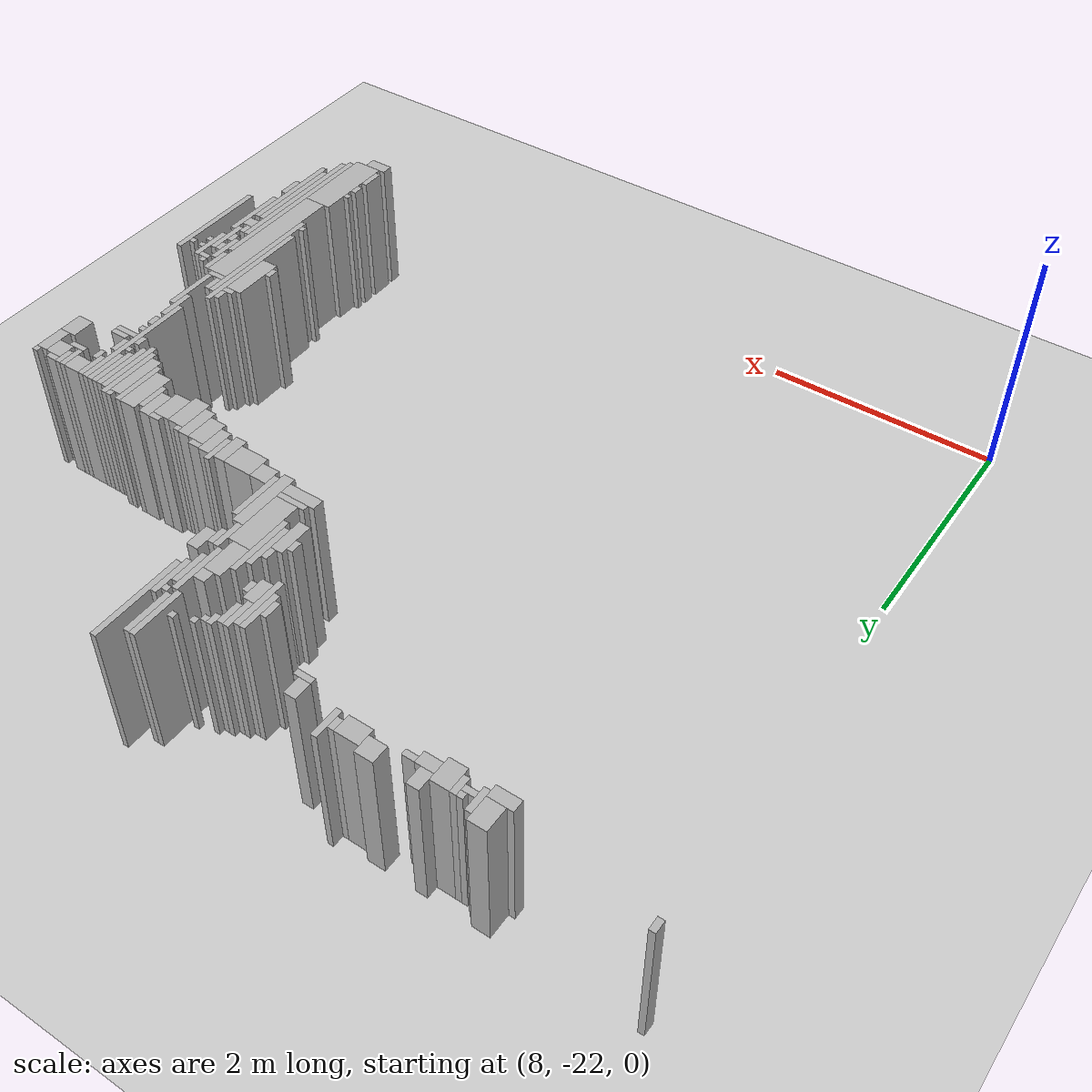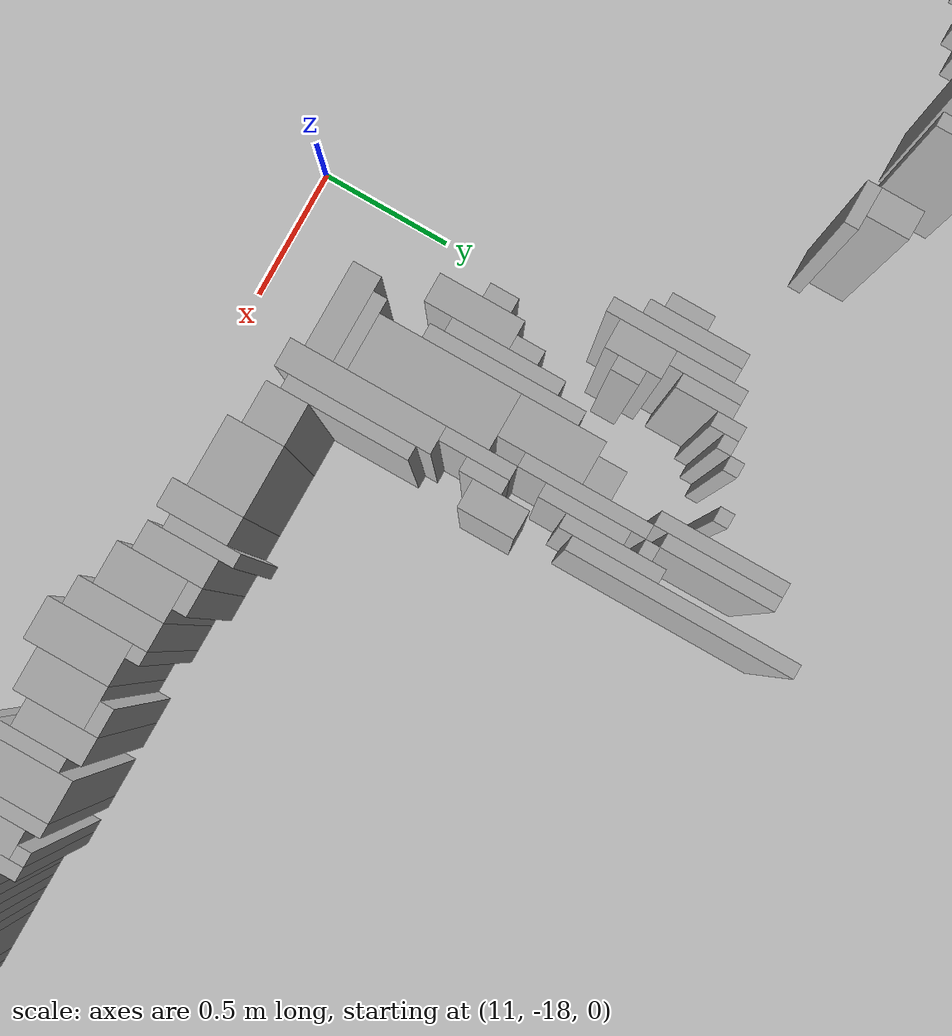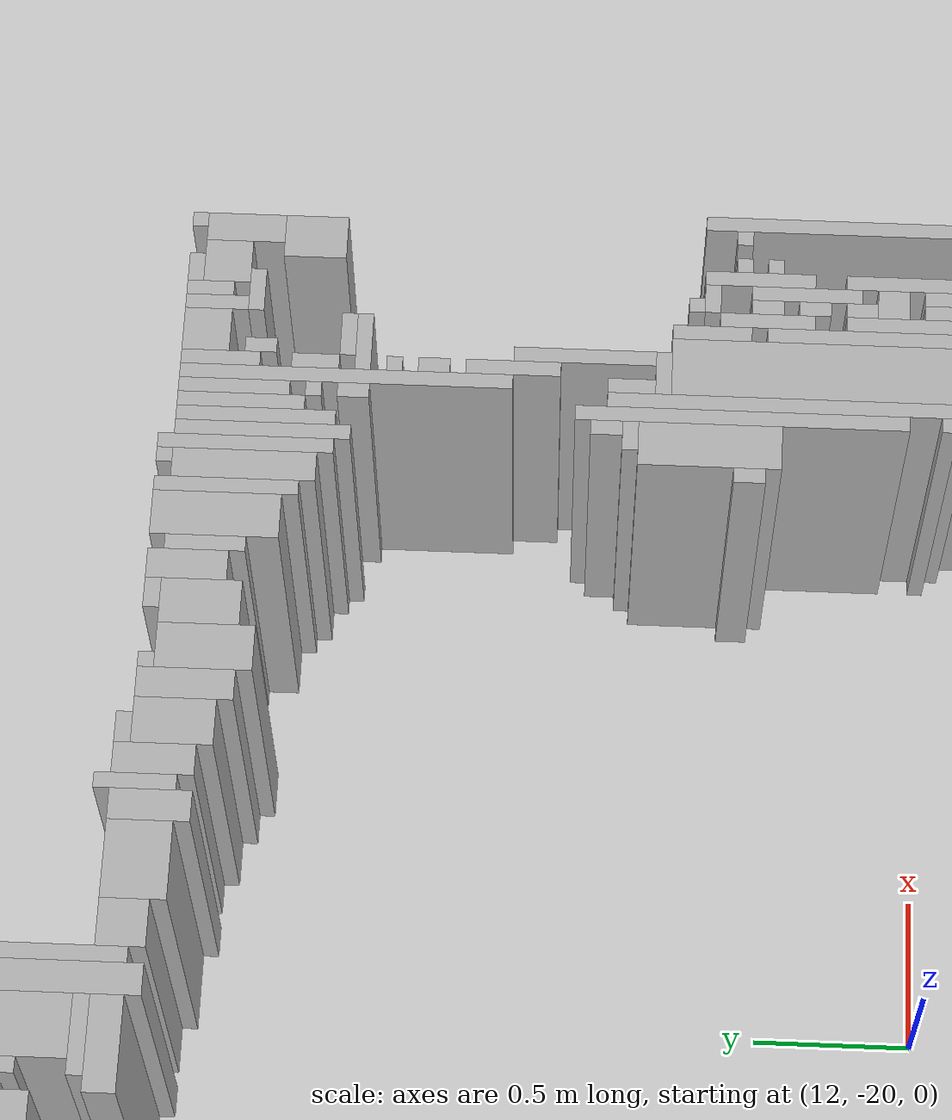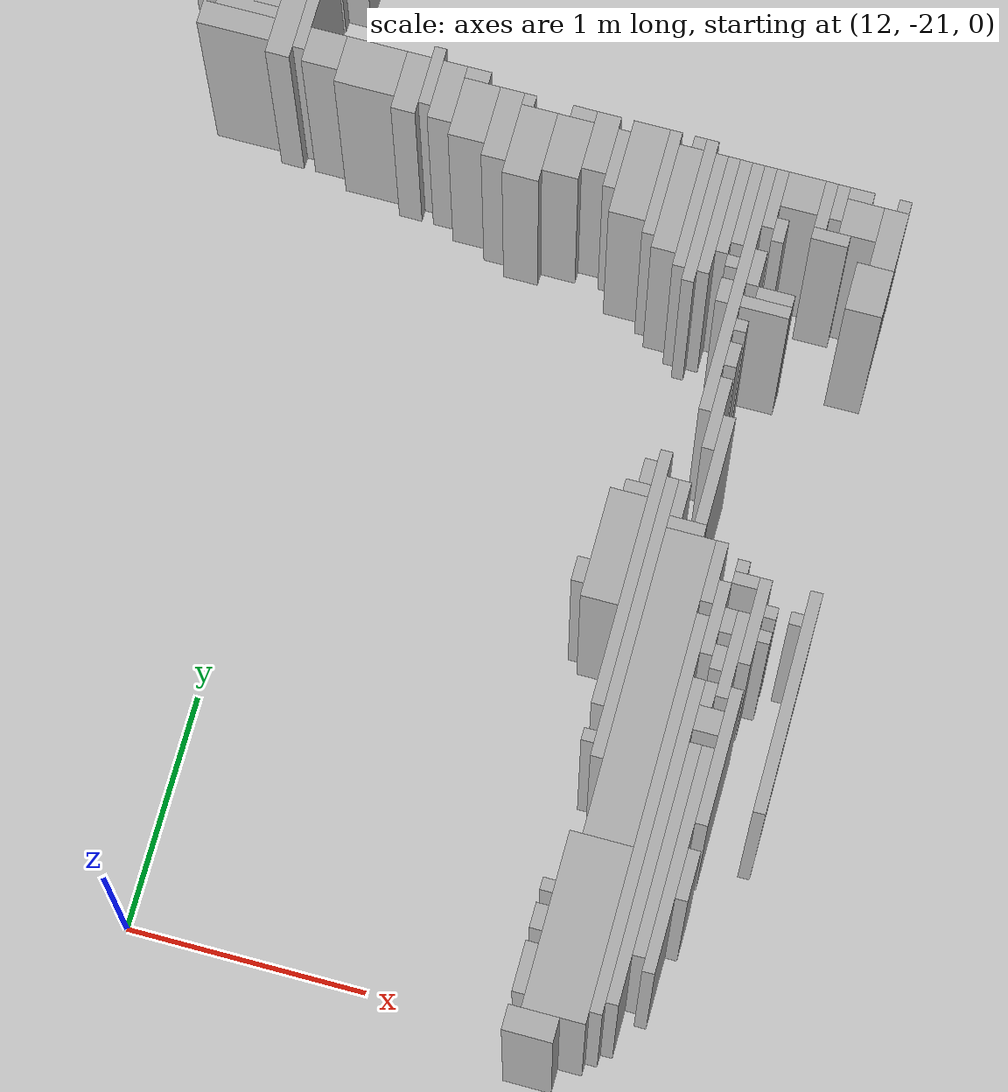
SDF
<sdf version="1.6">
 <world name="d10_floor">
  <include><uri>model://sun</uri></include>
  <include><uri>model://ground_plane</uri></include>
  <model name="d10_walls">
   <static>true</static>
   <link name="w0">
    <pose>13.725 -21.145 0.60 0 0 0</pose>
    <collision name="c"><geometry><box><size>0.200 0.100 1.20</size></box></geometry></collision>
    <visual name="v">
     <geometry><box><size>0.200 0.100 1.20</size></box></geometry>
     <material><ambient>0.6 0.6 0.6 1</ambient><diffuse>0.7 0.7 0.7 1</diffuse></material>
    </visual>
   </link>
   <link name="w1">
    <pose>13.800 -20.745 0.60 0 0 0</pose>
    <collision name="c"><geometry><box><size>0.250 0.700 1.20</size></box></geometry></collision>
    <visual name="v">
     <geometry><box><size>0.250 0.700 1.20</size></box></geometry>
     <material><ambient>0.6 0.6 0.6 1</ambient><diffuse>0.7 0.7 0.7 1</diffuse></material>
    </visual>
   </link>
   <link name="w2">
    <pose>13.650 -20.945 0.60 0 0 0</pose>
    <collision name="c"><geometry><box><size>0.050 0.200 1.20</size></box></geometry></collision>
    <visual name="v">
     <geometry><box><size>0.050 0.200 1.20</size></box></geometry>
     <material><ambient>0.6 0.6 0.6 1</ambient><diffuse>0.7 0.7 0.7 1</diffuse></material>
    </visual>
   </link>
   <link name="w3">
    <pose>13.950 -20.245 0.60 0 0 0</pose>
    <collision name="c"><geometry><box><size>0.050 1.600 1.20</size></box></geometry></collision>
    <visual name="v">
     <geometry><box><size>0.050 1.600 1.20</size></box></geometry>
     <material><ambient>0.6 0.6 0.6 1</ambient><diffuse>0.7 0.7 0.7 1</diffuse></material>
    </visual>
   </link>
   <link name="w4">
    <pose>14.000 -20.345 0.60 0 0 0</pose>
    <collision name="c"><geometry><box><size>0.050 1.300 1.20</size></box></geometry></collision>
    <visual name="v">
     <geometry><box><size>0.050 1.300 1.20</size></box></geometry>
     <material><ambient>0.6 0.6 0.6 1</ambient><diffuse>0.7 0.7 0.7 1</diffuse></material>
    </visual>
   </link>
   <link name="w5">
    <pose>14.100 -20.395 0.60 0 0 0</pose>
    <collision name="c"><geometry><box><size>0.050 0.900 1.20</size></box></geometry></collision>
    <visual name="v">
     <geometry><box><size>0.050 0.900 1.20</size></box></geometry>
     <material><ambient>0.6 0.6 0.6 1</ambient><diffuse>0.7 0.7 0.7 1</diffuse></material>
    </visual>
   </link>
   <link name="w6">
    <pose>13.650 -20.745 0.60 0 0 0</pose>
    <collision name="c"><geometry><box><size>0.050 0.100 1.20</size></box></geometry></collision>
    <visual name="v">
     <geometry><box><size>0.050 0.100 1.20</size></box></geometry>
     <material><ambient>0.6 0.6 0.6 1</ambient><diffuse>0.7 0.7 0.7 1</diffuse></material>
    </visual>
   </link>
   <link name="w7">
    <pose>14.050 -20.370 0.60 0 0 0</pose>
    <collision name="c"><geometry><box><size>0.050 0.850 1.20</size></box></geometry></collision>
    <visual name="v">
     <geometry><box><size>0.050 0.850 1.20</size></box></geometry>
     <material><ambient>0.6 0.6 0.6 1</ambient><diffuse>0.7 0.7 0.7 1</diffuse></material>
    </visual>
   </link>
   <link name="w11">
    <pose>13.650 -20.620 0.60 0 0 0</pose>
    <collision name="c"><geometry><box><size>0.050 0.050 1.20</size></box></geometry></collision>
    <visual name="v">
     <geometry><box><size>0.050 0.050 1.20</size></box></geometry>
     <material><ambient>0.6 0.6 0.6 1</ambient><diffuse>0.7 0.7 0.7 1</diffuse></material>
    </visual>
   </link>
   <link name="w22">
    <pose>14.150 -20.445 0.60 0 0 0</pose>
    <collision name="c"><geometry><box><size>0.050 0.200 1.20</size></box></geometry></collision>
    <visual name="v">
     <geometry><box><size>0.050 0.200 1.20</size></box></geometry>
     <material><ambient>0.6 0.6 0.6 1</ambient><diffuse>0.7 0.7 0.7 1</diffuse></material>
    </visual>
   </link>
   <link name="w36">
    <pose>13.825 -19.770 0.60 0 0 0</pose>
    <collision name="c"><geometry><box><size>0.200 1.250 1.20</size></box></geometry></collision>
    <visual name="v">
     <geometry><box><size>0.200 1.250 1.20</size></box></geometry>
     <material><ambient>0.6 0.6 0.6 1</ambient><diffuse>0.7 0.7 0.7 1</diffuse></material>
    </visual>
   </link>
   <link name="w51">
    <pose>14.150 -19.970 0.60 0 0 0</pose>
    <collision name="c"><geometry><box><size>0.050 0.550 1.20</size></box></geometry></collision>
    <visual name="v">
     <geometry><box><size>0.050 0.550 1.20</size></box></geometry>
     <material><ambient>0.6 0.6 0.6 1</ambient><diffuse>0.7 0.7 0.7 1</diffuse></material>
    </visual>
   </link>
   <link name="w55">
    <pose>14.350 -19.695 0.60 0 0 0</pose>
    <collision name="c"><geometry><box><size>0.050 0.900 1.20</size></box></geometry></collision>
    <visual name="v">
     <geometry><box><size>0.050 0.900 1.20</size></box></geometry>
     <material><ambient>0.6 0.6 0.6 1</ambient><diffuse>0.7 0.7 0.7 1</diffuse></material>
    </visual>
   </link>
   <link name="w57">
    <pose>13.700 -19.520 0.60 0 0 0</pose>
    <collision name="c"><geometry><box><size>0.050 1.150 1.20</size></box></geometry></collision>
    <visual name="v">
     <geometry><box><size>0.050 1.150 1.20</size></box></geometry>
     <material><ambient>0.6 0.6 0.6 1</ambient><diffuse>0.7 0.7 0.7 1</diffuse></material>
    </visual>
   </link>
   <link name="w60">
    <pose>13.650 -20.020 0.60 0 0 0</pose>
    <collision name="c"><geometry><box><size>0.050 0.050 1.20</size></box></geometry></collision>
    <visual name="v">
     <geometry><box><size>0.050 0.050 1.20</size></box></geometry>
     <material><ambient>0.6 0.6 0.6 1</ambient><diffuse>0.7 0.7 0.7 1</diffuse></material>
    </visual>
   </link>
   <link name="w69">
    <pose>13.650 -19.370 0.60 0 0 0</pose>
    <collision name="c"><geometry><box><size>0.050 1.050 1.20</size></box></geometry></collision>
    <visual name="v">
     <geometry><box><size>0.050 1.050 1.20</size></box></geometry>
     <material><ambient>0.6 0.6 0.6 1</ambient><diffuse>0.7 0.7 0.7 1</diffuse></material>
    </visual>
   </link>
   <link name="w70">
    <pose>14.075 -19.845 0.60 0 0 0</pose>
    <collision name="c"><geometry><box><size>0.100 0.100 1.20</size></box></geometry></collision>
    <visual name="v">
     <geometry><box><size>0.100 0.100 1.20</size></box></geometry>
     <material><ambient>0.6 0.6 0.6 1</ambient><diffuse>0.7 0.7 0.7 1</diffuse></material>
    </visual>
   </link>
   <link name="w72">
    <pose>14.050 -19.745 0.60 0 0 0</pose>
    <collision name="c"><geometry><box><size>0.050 0.100 1.20</size></box></geometry></collision>
    <visual name="v">
     <geometry><box><size>0.050 0.100 1.20</size></box></geometry>
     <material><ambient>0.6 0.6 0.6 1</ambient><diffuse>0.7 0.7 0.7 1</diffuse></material>
    </visual>
   </link>
   <link name="w74">
    <pose>14.100 -19.570 0.60 0 0 0</pose>
    <collision name="c"><geometry><box><size>0.050 0.350 1.20</size></box></geometry></collision>
    <visual name="v">
     <geometry><box><size>0.050 0.350 1.20</size></box></geometry>
     <material><ambient>0.6 0.6 0.6 1</ambient><diffuse>0.7 0.7 0.7 1</diffuse></material>
    </visual>
   </link>
   <link name="w76">
    <pose>14.050 -19.595 0.60 0 0 0</pose>
    <collision name="c"><geometry><box><size>0.050 0.100 1.20</size></box></geometry></collision>
    <visual name="v">
     <geometry><box><size>0.050 0.100 1.20</size></box></geometry>
     <material><ambient>0.6 0.6 0.6 1</ambient><diffuse>0.7 0.7 0.7 1</diffuse></material>
    </visual>
   </link>
   <link name="w79">
    <pose>14.000 -19.445 0.60 0 0 0</pose>
    <collision name="c"><geometry><box><size>0.050 0.300 1.20</size></box></geometry></collision>
    <visual name="v">
     <geometry><box><size>0.050 0.300 1.20</size></box></geometry>
     <material><ambient>0.6 0.6 0.6 1</ambient><diffuse>0.7 0.7 0.7 1</diffuse></material>
    </visual>
   </link>
   <link name="w80">
    <pose>14.150 -19.420 0.60 0 0 0</pose>
    <collision name="c"><geometry><box><size>0.050 0.350 1.20</size></box></geometry></collision>
    <visual name="v">
     <geometry><box><size>0.050 0.350 1.20</size></box></geometry>
     <material><ambient>0.6 0.6 0.6 1</ambient><diffuse>0.7 0.7 0.7 1</diffuse></material>
    </visual>
   </link>
   <link name="w82">
    <pose>13.550 -19.270 0.60 0 0 0</pose>
    <collision name="c"><geometry><box><size>0.150 0.450 1.20</size></box></geometry></collision>
    <visual name="v">
     <geometry><box><size>0.150 0.450 1.20</size></box></geometry>
     <material><ambient>0.6 0.6 0.6 1</ambient><diffuse>0.7 0.7 0.7 1</diffuse></material>
    </visual>
   </link>
   <link name="w83">
    <pose>14.050 -19.445 0.60 0 0 0</pose>
    <collision name="c"><geometry><box><size>0.050 0.100 1.20</size></box></geometry></collision>
    <visual name="v">
     <geometry><box><size>0.050 0.100 1.20</size></box></geometry>
     <material><ambient>0.6 0.6 0.6 1</ambient><diffuse>0.7 0.7 0.7 1</diffuse></material>
    </visual>
   </link>
   <link name="w84">
    <pose>14.200 -19.470 0.60 0 0 0</pose>
    <collision name="c"><geometry><box><size>0.050 0.050 1.20</size></box></geometry></collision>
    <visual name="v">
     <geometry><box><size>0.050 0.050 1.20</size></box></geometry>
     <material><ambient>0.6 0.6 0.6 1</ambient><diffuse>0.7 0.7 0.7 1</diffuse></material>
    </visual>
   </link>
   <link name="w85">
    <pose>13.450 -19.395 0.60 0 0 0</pose>
    <collision name="c"><geometry><box><size>0.050 0.100 1.20</size></box></geometry></collision>
    <visual name="v">
     <geometry><box><size>0.050 0.100 1.20</size></box></geometry>
     <material><ambient>0.6 0.6 0.6 1</ambient><diffuse>0.7 0.7 0.7 1</diffuse></material>
    </visual>
   </link>
   <link name="w89">
    <pose>13.950 -19.270 0.60 0 0 0</pose>
    <collision name="c"><geometry><box><size>0.050 0.250 1.20</size></box></geometry></collision>
    <visual name="v">
     <geometry><box><size>0.050 0.250 1.20</size></box></geometry>
     <material><ambient>0.6 0.6 0.6 1</ambient><diffuse>0.7 0.7 0.7 1</diffuse></material>
    </visual>
   </link>
   <link name="w90">
    <pose>14.200 -19.370 0.60 0 0 0</pose>
    <collision name="c"><geometry><box><size>0.050 0.050 1.20</size></box></geometry></collision>
    <visual name="v">
     <geometry><box><size>0.050 0.050 1.20</size></box></geometry>
     <material><ambient>0.6 0.6 0.6 1</ambient><diffuse>0.7 0.7 0.7 1</diffuse></material>
    </visual>
   </link>
   <link name="w91">
    <pose>14.300 -19.370 0.60 0 0 0</pose>
    <collision name="c"><geometry><box><size>0.050 0.050 1.20</size></box></geometry></collision>
    <visual name="v">
     <geometry><box><size>0.050 0.050 1.20</size></box></geometry>
     <material><ambient>0.6 0.6 0.6 1</ambient><diffuse>0.7 0.7 0.7 1</diffuse></material>
    </visual>
   </link>
   <link name="w96">
    <pose>14.075 -19.270 0.60 0 0 0</pose>
    <collision name="c"><geometry><box><size>0.100 0.050 1.20</size></box></geometry></collision>
    <visual name="v">
     <geometry><box><size>0.100 0.050 1.20</size></box></geometry>
     <material><ambient>0.6 0.6 0.6 1</ambient><diffuse>0.7 0.7 0.7 1</diffuse></material>
    </visual>
   </link>
   <link name="w99">
    <pose>14.050 -19.220 0.60 0 0 0</pose>
    <collision name="c"><geometry><box><size>0.050 0.050 1.20</size></box></geometry></collision>
    <visual name="v">
     <geometry><box><size>0.050 0.050 1.20</size></box></geometry>
     <material><ambient>0.6 0.6 0.6 1</ambient><diffuse>0.7 0.7 0.7 1</diffuse></material>
    </visual>
   </link>
   <link name="w103">
    <pose>13.800 -19.120 0.60 0 0 0</pose>
    <collision name="c"><geometry><box><size>0.150 0.050 1.20</size></box></geometry></collision>
    <visual name="v">
     <geometry><box><size>0.150 0.050 1.20</size></box></geometry>
     <material><ambient>0.6 0.6 0.6 1</ambient><diffuse>0.7 0.7 0.7 1</diffuse></material>
    </visual>
   </link>
   <link name="w104">
    <pose>13.750 -19.020 0.60 0 0 0</pose>
    <collision name="c"><geometry><box><size>0.050 0.150 1.20</size></box></geometry></collision>
    <visual name="v">
     <geometry><box><size>0.050 0.150 1.20</size></box></geometry>
     <material><ambient>0.6 0.6 0.6 1</ambient><diffuse>0.7 0.7 0.7 1</diffuse></material>
    </visual>
   </link>
   <link name="w105">
    <pose>13.850 -18.870 0.60 0 0 0</pose>
    <collision name="c"><geometry><box><size>0.050 0.450 1.20</size></box></geometry></collision>
    <visual name="v">
     <geometry><box><size>0.050 0.450 1.20</size></box></geometry>
     <material><ambient>0.6 0.6 0.6 1</ambient><diffuse>0.7 0.7 0.7 1</diffuse></material>
    </visual>
   </link>
   <link name="w107">
    <pose>13.575 -19.020 0.60 0 0 0</pose>
    <collision name="c"><geometry><box><size>0.100 0.050 1.20</size></box></geometry></collision>
    <visual name="v">
     <geometry><box><size>0.100 0.050 1.20</size></box></geometry>
     <material><ambient>0.6 0.6 0.6 1</ambient><diffuse>0.7 0.7 0.7 1</diffuse></material>
    </visual>
   </link>
   <link name="w109">
    <pose>13.600 -18.945 0.60 0 0 0</pose>
    <collision name="c"><geometry><box><size>0.050 0.100 1.20</size></box></geometry></collision>
    <visual name="v">
     <geometry><box><size>0.050 0.100 1.20</size></box></geometry>
     <material><ambient>0.6 0.6 0.6 1</ambient><diffuse>0.7 0.7 0.7 1</diffuse></material>
    </visual>
   </link>
   <link name="w111">
    <pose>13.800 -18.645 0.60 0 0 0</pose>
    <collision name="c"><geometry><box><size>0.050 0.300 1.20</size></box></geometry></collision>
    <visual name="v">
     <geometry><box><size>0.050 0.300 1.20</size></box></geometry>
     <material><ambient>0.6 0.6 0.6 1</ambient><diffuse>0.7 0.7 0.7 1</diffuse></material>
    </visual>
   </link>
   <link name="w117">
    <pose>13.750 -18.120 0.60 0 0 0</pose>
    <collision name="c"><geometry><box><size>0.050 1.050 1.20</size></box></geometry></collision>
    <visual name="v">
     <geometry><box><size>0.050 1.050 1.20</size></box></geometry>
     <material><ambient>0.6 0.6 0.6 1</ambient><diffuse>0.7 0.7 0.7 1</diffuse></material>
    </visual>
   </link>
   <link name="w122">
    <pose>13.800 -18.395 0.60 0 0 0</pose>
    <collision name="c"><geometry><box><size>0.050 0.100 1.20</size></box></geometry></collision>
    <visual name="v">
     <geometry><box><size>0.050 0.100 1.20</size></box></geometry>
     <material><ambient>0.6 0.6 0.6 1</ambient><diffuse>0.7 0.7 0.7 1</diffuse></material>
    </visual>
   </link>
   <link name="w129">
    <pose>13.800 -18.270 0.60 0 0 0</pose>
    <collision name="c"><geometry><box><size>0.050 0.050 1.20</size></box></geometry></collision>
    <visual name="v">
     <geometry><box><size>0.050 0.050 1.20</size></box></geometry>
     <material><ambient>0.6 0.6 0.6 1</ambient><diffuse>0.7 0.7 0.7 1</diffuse></material>
    </visual>
   </link>
   <link name="w131">
    <pose>13.700 -18.145 0.60 0 0 0</pose>
    <collision name="c"><geometry><box><size>0.050 0.100 1.20</size></box></geometry></collision>
    <visual name="v">
     <geometry><box><size>0.050 0.100 1.20</size></box></geometry>
     <material><ambient>0.6 0.6 0.6 1</ambient><diffuse>0.7 0.7 0.7 1</diffuse></material>
    </visual>
   </link>
   <link name="w132">
    <pose>13.875 -18.170 0.60 0 0 0</pose>
    <collision name="c"><geometry><box><size>0.200 0.050 1.20</size></box></geometry></collision>
    <visual name="v">
     <geometry><box><size>0.200 0.050 1.20</size></box></geometry>
     <material><ambient>0.6 0.6 0.6 1</ambient><diffuse>0.7 0.7 0.7 1</diffuse></material>
    </visual>
   </link>
   <link name="w134">
    <pose>13.550 -17.870 0.60 0 0 0</pose>
    <collision name="c"><geometry><box><size>0.050 0.550 1.20</size></box></geometry></collision>
    <visual name="v">
     <geometry><box><size>0.050 0.550 1.20</size></box></geometry>
     <material><ambient>0.6 0.6 0.6 1</ambient><diffuse>0.7 0.7 0.7 1</diffuse></material>
    </visual>
   </link>
   <link name="w135">
    <pose>13.900 -18.120 0.60 0 0 0</pose>
    <collision name="c"><geometry><box><size>0.150 0.050 1.20</size></box></geometry></collision>
    <visual name="v">
     <geometry><box><size>0.150 0.050 1.20</size></box></geometry>
     <material><ambient>0.6 0.6 0.6 1</ambient><diffuse>0.7 0.7 0.7 1</diffuse></material>
    </visual>
   </link>
   <link name="w139">
    <pose>13.500 -17.820 0.60 0 0 0</pose>
    <collision name="c"><geometry><box><size>0.050 0.550 1.20</size></box></geometry></collision>
    <visual name="v">
     <geometry><box><size>0.050 0.550 1.20</size></box></geometry>
     <material><ambient>0.6 0.6 0.6 1</ambient><diffuse>0.7 0.7 0.7 1</diffuse></material>
    </visual>
   </link>
   <link name="w140">
    <pose>13.600 -17.845 0.60 0 0 0</pose>
    <collision name="c"><geometry><box><size>0.050 0.500 1.20</size></box></geometry></collision>
    <visual name="v">
     <geometry><box><size>0.050 0.500 1.20</size></box></geometry>
     <material><ambient>0.6 0.6 0.6 1</ambient><diffuse>0.7 0.7 0.7 1</diffuse></material>
    </visual>
   </link>
   <link name="w141">
    <pose>13.800 -18.020 0.60 0 0 0</pose>
    <collision name="c"><geometry><box><size>0.050 0.150 1.20</size></box></geometry></collision>
    <visual name="v">
     <geometry><box><size>0.050 0.150 1.20</size></box></geometry>
     <material><ambient>0.6 0.6 0.6 1</ambient><diffuse>0.7 0.7 0.7 1</diffuse></material>
    </visual>
   </link>
   <link name="w142">
    <pose>14.250 -17.995 0.60 0 0 0</pose>
    <collision name="c"><geometry><box><size>0.150 0.200 1.20</size></box></geometry></collision>
    <visual name="v">
     <geometry><box><size>0.150 0.200 1.20</size></box></geometry>
     <material><ambient>0.6 0.6 0.6 1</ambient><diffuse>0.7 0.7 0.7 1</diffuse></material>
    </visual>
   </link>
   <link name="w146">
    <pose>13.425 -17.820 0.60 0 0 0</pose>
    <collision name="c"><geometry><box><size>0.100 0.450 1.20</size></box></geometry></collision>
    <visual name="v">
     <geometry><box><size>0.100 0.450 1.20</size></box></geometry>
     <material><ambient>0.6 0.6 0.6 1</ambient><diffuse>0.7 0.7 0.7 1</diffuse></material>
    </visual>
   </link>
   <link name="w147">
    <pose>13.700 -18.020 0.60 0 0 0</pose>
    <collision name="c"><geometry><box><size>0.050 0.050 1.20</size></box></geometry></collision>
    <visual name="v">
     <geometry><box><size>0.050 0.050 1.20</size></box></geometry>
     <material><ambient>0.6 0.6 0.6 1</ambient><diffuse>0.7 0.7 0.7 1</diffuse></material>
    </visual>
   </link>
   <link name="w153">
    <pose>13.350 -17.770 0.60 0 0 0</pose>
    <collision name="c"><geometry><box><size>0.050 0.450 1.20</size></box></geometry></collision>
    <visual name="v">
     <geometry><box><size>0.050 0.450 1.20</size></box></geometry>
     <material><ambient>0.6 0.6 0.6 1</ambient><diffuse>0.7 0.7 0.7 1</diffuse></material>
    </visual>
   </link>
   <link name="w154">
    <pose>13.650 -17.795 0.60 0 0 0</pose>
    <collision name="c"><geometry><box><size>0.050 0.400 1.20</size></box></geometry></collision>
    <visual name="v">
     <geometry><box><size>0.050 0.400 1.20</size></box></geometry>
     <material><ambient>0.6 0.6 0.6 1</ambient><diffuse>0.7 0.7 0.7 1</diffuse></material>
    </visual>
   </link>
   <link name="w159">
    <pose>13.250 -17.745 0.60 0 0 0</pose>
    <collision name="c"><geometry><box><size>0.150 0.400 1.20</size></box></geometry></collision>
    <visual name="v">
     <geometry><box><size>0.150 0.400 1.20</size></box></geometry>
     <material><ambient>0.6 0.6 0.6 1</ambient><diffuse>0.7 0.7 0.7 1</diffuse></material>
    </visual>
   </link>
   <link name="w160">
    <pose>13.700 -17.770 0.60 0 0 0</pose>
    <collision name="c"><geometry><box><size>0.050 0.350 1.20</size></box></geometry></collision>
    <visual name="v">
     <geometry><box><size>0.050 0.350 1.20</size></box></geometry>
     <material><ambient>0.6 0.6 0.6 1</ambient><diffuse>0.7 0.7 0.7 1</diffuse></material>
    </visual>
   </link>
   <link name="w166">
    <pose>12.800 -17.745 0.60 0 0 0</pose>
    <collision name="c"><geometry><box><size>0.150 0.300 1.20</size></box></geometry></collision>
    <visual name="v">
     <geometry><box><size>0.150 0.300 1.20</size></box></geometry>
     <material><ambient>0.6 0.6 0.6 1</ambient><diffuse>0.7 0.7 0.7 1</diffuse></material>
    </visual>
   </link>
   <link name="w167">
    <pose>13.850 -17.845 0.60 0 0 0</pose>
    <collision name="c"><geometry><box><size>0.050 0.100 1.20</size></box></geometry></collision>
    <visual name="v">
     <geometry><box><size>0.050 0.100 1.20</size></box></geometry>
     <material><ambient>0.6 0.6 0.6 1</ambient><diffuse>0.7 0.7 0.7 1</diffuse></material>
    </visual>
   </link>
   <link name="w168">
    <pose>14.275 -17.770 0.60 0 0 0</pose>
    <collision name="c"><geometry><box><size>0.100 0.250 1.20</size></box></geometry></collision>
    <visual name="v">
     <geometry><box><size>0.100 0.250 1.20</size></box></geometry>
     <material><ambient>0.6 0.6 0.6 1</ambient><diffuse>0.7 0.7 0.7 1</diffuse></material>
    </visual>
   </link>
   <link name="w181">
    <pose>12.675 -17.695 0.60 0 0 0</pose>
    <collision name="c"><geometry><box><size>0.100 0.300 1.20</size></box></geometry></collision>
    <visual name="v">
     <geometry><box><size>0.100 0.300 1.20</size></box></geometry>
     <material><ambient>0.6 0.6 0.6 1</ambient><diffuse>0.7 0.7 0.7 1</diffuse></material>
    </visual>
   </link>
   <link name="w182">
    <pose>12.950 -17.720 0.60 0 0 0</pose>
    <collision name="c"><geometry><box><size>0.150 0.250 1.20</size></box></geometry></collision>
    <visual name="v">
     <geometry><box><size>0.150 0.250 1.20</size></box></geometry>
     <material><ambient>0.6 0.6 0.6 1</ambient><diffuse>0.7 0.7 0.7 1</diffuse></material>
    </visual>
   </link>
   <link name="w183">
    <pose>13.150 -17.720 0.60 0 0 0</pose>
    <collision name="c"><geometry><box><size>0.050 0.250 1.20</size></box></geometry></collision>
    <visual name="v">
     <geometry><box><size>0.050 0.250 1.20</size></box></geometry>
     <material><ambient>0.6 0.6 0.6 1</ambient><diffuse>0.7 0.7 0.7 1</diffuse></material>
    </visual>
   </link>
   <link name="w184">
    <pose>13.800 -17.720 0.60 0 0 0</pose>
    <collision name="c"><geometry><box><size>0.050 0.250 1.20</size></box></geometry></collision>
    <visual name="v">
     <geometry><box><size>0.050 0.250 1.20</size></box></geometry>
     <material><ambient>0.6 0.6 0.6 1</ambient><diffuse>0.7 0.7 0.7 1</diffuse></material>
    </visual>
   </link>
   <link name="w185">
    <pose>14.050 -17.820 0.60 0 0 0</pose>
    <collision name="c"><geometry><box><size>0.150 0.050 1.20</size></box></geometry></collision>
    <visual name="v">
     <geometry><box><size>0.150 0.050 1.20</size></box></geometry>
     <material><ambient>0.6 0.6 0.6 1</ambient><diffuse>0.7 0.7 0.7 1</diffuse></material>
    </visual>
   </link>
   <link name="w198">
    <pose>12.550 -17.670 0.60 0 0 0</pose>
    <collision name="c"><geometry><box><size>0.150 0.250 1.20</size></box></geometry></collision>
    <visual name="v">
     <geometry><box><size>0.150 0.250 1.20</size></box></geometry>
     <material><ambient>0.6 0.6 0.6 1</ambient><diffuse>0.7 0.7 0.7 1</diffuse></material>
    </visual>
   </link>
   <link name="w199">
    <pose>13.075 -17.670 0.60 0 0 0</pose>
    <collision name="c"><geometry><box><size>0.100 0.250 1.20</size></box></geometry></collision>
    <visual name="v">
     <geometry><box><size>0.100 0.250 1.20</size></box></geometry>
     <material><ambient>0.6 0.6 0.6 1</ambient><diffuse>0.7 0.7 0.7 1</diffuse></material>
    </visual>
   </link>
   <link name="w200">
    <pose>14.000 -17.695 0.60 0 0 0</pose>
    <collision name="c"><geometry><box><size>0.050 0.200 1.20</size></box></geometry></collision>
    <visual name="v">
     <geometry><box><size>0.050 0.200 1.20</size></box></geometry>
     <material><ambient>0.6 0.6 0.6 1</ambient><diffuse>0.7 0.7 0.7 1</diffuse></material>
    </visual>
   </link>
   <link name="w201">
    <pose>14.150 -17.720 0.60 0 0 0</pose>
    <collision name="c"><geometry><box><size>0.150 0.150 1.20</size></box></geometry></collision>
    <visual name="v">
     <geometry><box><size>0.150 0.150 1.20</size></box></geometry>
     <material><ambient>0.6 0.6 0.6 1</ambient><diffuse>0.7 0.7 0.7 1</diffuse></material>
    </visual>
   </link>
   <link name="w207">
    <pose>12.275 -17.620 0.60 0 0 0</pose>
    <collision name="c"><geometry><box><size>0.100 0.250 1.20</size></box></geometry></collision>
    <visual name="v">
     <geometry><box><size>0.100 0.250 1.20</size></box></geometry>
     <material><ambient>0.6 0.6 0.6 1</ambient><diffuse>0.7 0.7 0.7 1</diffuse></material>
    </visual>
   </link>
   <link name="w208">
    <pose>12.425 -17.620 0.60 0 0 0</pose>
    <collision name="c"><geometry><box><size>0.100 0.250 1.20</size></box></geometry></collision>
    <visual name="v">
     <geometry><box><size>0.100 0.250 1.20</size></box></geometry>
     <material><ambient>0.6 0.6 0.6 1</ambient><diffuse>0.7 0.7 0.7 1</diffuse></material>
    </visual>
   </link>
   <link name="w209">
    <pose>13.900 -17.670 0.60 0 0 0</pose>
    <collision name="c"><geometry><box><size>0.150 0.150 1.20</size></box></geometry></collision>
    <visual name="v">
     <geometry><box><size>0.150 0.150 1.20</size></box></geometry>
     <material><ambient>0.6 0.6 0.6 1</ambient><diffuse>0.7 0.7 0.7 1</diffuse></material>
    </visual>
   </link>
   <link name="w210">
    <pose>14.050 -17.670 0.60 0 0 0</pose>
    <collision name="c"><geometry><box><size>0.050 0.150 1.20</size></box></geometry></collision>
    <visual name="v">
     <geometry><box><size>0.050 0.150 1.20</size></box></geometry>
     <material><ambient>0.6 0.6 0.6 1</ambient><diffuse>0.7 0.7 0.7 1</diffuse></material>
    </visual>
   </link>
   <link name="w216">
    <pose>12.100 -17.595 0.60 0 0 0</pose>
    <collision name="c"><geometry><box><size>0.250 0.200 1.20</size></box></geometry></collision>
    <visual name="v">
     <geometry><box><size>0.250 0.200 1.20</size></box></geometry>
     <material><ambient>0.6 0.6 0.6 1</ambient><diffuse>0.7 0.7 0.7 1</diffuse></material>
    </visual>
   </link>
   <link name="w217">
    <pose>12.350 -17.570 0.60 0 0 0</pose>
    <collision name="c"><geometry><box><size>0.050 0.250 1.20</size></box></geometry></collision>
    <visual name="v">
     <geometry><box><size>0.050 0.250 1.20</size></box></geometry>
     <material><ambient>0.6 0.6 0.6 1</ambient><diffuse>0.7 0.7 0.7 1</diffuse></material>
    </visual>
   </link>
   <link name="w222">
    <pose>11.725 -17.370 0.60 0 0 0</pose>
    <collision name="c"><geometry><box><size>0.100 0.550 1.20</size></box></geometry></collision>
    <visual name="v">
     <geometry><box><size>0.100 0.550 1.20</size></box></geometry>
     <material><ambient>0.6 0.6 0.6 1</ambient><diffuse>0.7 0.7 0.7 1</diffuse></material>
    </visual>
   </link>
   <link name="w223">
    <pose>11.900 -17.570 0.60 0 0 0</pose>
    <collision name="c"><geometry><box><size>0.150 0.150 1.20</size></box></geometry></collision>
    <visual name="v">
     <geometry><box><size>0.150 0.150 1.20</size></box></geometry>
     <material><ambient>0.6 0.6 0.6 1</ambient><diffuse>0.7 0.7 0.7 1</diffuse></material>
    </visual>
   </link>
   <link name="w224">
    <pose>14.125 -17.620 0.60 0 0 0</pose>
    <collision name="c"><geometry><box><size>0.100 0.050 1.20</size></box></geometry></collision>
    <visual name="v">
     <geometry><box><size>0.100 0.050 1.20</size></box></geometry>
     <material><ambient>0.6 0.6 0.6 1</ambient><diffuse>0.7 0.7 0.7 1</diffuse></material>
    </visual>
   </link>
   <link name="w225">
    <pose>14.300 -17.620 0.60 0 0 0</pose>
    <collision name="c"><geometry><box><size>0.050 0.050 1.20</size></box></geometry></collision>
    <visual name="v">
     <geometry><box><size>0.050 0.050 1.20</size></box></geometry>
     <material><ambient>0.6 0.6 0.6 1</ambient><diffuse>0.7 0.7 0.7 1</diffuse></material>
    </visual>
   </link>
   <link name="w230">
    <pose>11.525 -17.545 0.60 0 0 0</pose>
    <collision name="c"><geometry><box><size>0.300 0.100 1.20</size></box></geometry></collision>
    <visual name="v">
     <geometry><box><size>0.300 0.100 1.20</size></box></geometry>
     <material><ambient>0.6 0.6 0.6 1</ambient><diffuse>0.7 0.7 0.7 1</diffuse></material>
    </visual>
   </link>
   <link name="w231">
    <pose>11.800 -17.370 0.60 0 0 0</pose>
    <collision name="c"><geometry><box><size>0.050 0.450 1.20</size></box></geometry></collision>
    <visual name="v">
     <geometry><box><size>0.050 0.450 1.20</size></box></geometry>
     <material><ambient>0.6 0.6 0.6 1</ambient><diffuse>0.7 0.7 0.7 1</diffuse></material>
    </visual>
   </link>
   <link name="w232">
    <pose>12.750 -17.570 0.60 0 0 0</pose>
    <collision name="c"><geometry><box><size>0.050 0.050 1.20</size></box></geometry></collision>
    <visual name="v">
     <geometry><box><size>0.050 0.050 1.20</size></box></geometry>
     <material><ambient>0.6 0.6 0.6 1</ambient><diffuse>0.7 0.7 0.7 1</diffuse></material>
    </visual>
   </link>
   <link name="w233">
    <pose>12.975 -17.570 0.60 0 0 0</pose>
    <collision name="c"><geometry><box><size>0.100 0.050 1.20</size></box></geometry></collision>
    <visual name="v">
     <geometry><box><size>0.100 0.050 1.20</size></box></geometry>
     <material><ambient>0.6 0.6 0.6 1</ambient><diffuse>0.7 0.7 0.7 1</diffuse></material>
    </visual>
   </link>
   <link name="w234">
    <pose>13.450 -17.570 0.60 0 0 0</pose>
    <collision name="c"><geometry><box><size>0.050 0.050 1.20</size></box></geometry></collision>
    <visual name="v">
     <geometry><box><size>0.050 0.050 1.20</size></box></geometry>
     <material><ambient>0.6 0.6 0.6 1</ambient><diffuse>0.7 0.7 0.7 1</diffuse></material>
    </visual>
   </link>
   <link name="w235">
    <pose>12.525 -17.520 0.60 0 0 0</pose>
    <collision name="c"><geometry><box><size>0.100 0.050 1.20</size></box></geometry></collision>
    <visual name="v">
     <geometry><box><size>0.100 0.050 1.20</size></box></geometry>
     <material><ambient>0.6 0.6 0.6 1</ambient><diffuse>0.7 0.7 0.7 1</diffuse></material>
    </visual>
   </link>
   <link name="w236">
    <pose>11.550 -17.470 0.60 0 0 0</pose>
    <collision name="c"><geometry><box><size>0.250 0.050 1.20</size></box></geometry></collision>
    <visual name="v">
     <geometry><box><size>0.250 0.050 1.20</size></box></geometry>
     <material><ambient>0.6 0.6 0.6 1</ambient><diffuse>0.7 0.7 0.7 1</diffuse></material>
    </visual>
   </link>
   <link name="w237">
    <pose>11.575 -17.195 0.60 0 0 0</pose>
    <collision name="c"><geometry><box><size>0.200 0.500 1.20</size></box></geometry></collision>
    <visual name="v">
     <geometry><box><size>0.200 0.500 1.20</size></box></geometry>
     <material><ambient>0.6 0.6 0.6 1</ambient><diffuse>0.7 0.7 0.7 1</diffuse></material>
    </visual>
   </link>
   <link name="w239">
    <pose>11.325 -17.195 0.60 0 0 0</pose>
    <collision name="c"><geometry><box><size>0.100 0.300 1.20</size></box></geometry></collision>
    <visual name="v">
     <geometry><box><size>0.100 0.300 1.20</size></box></geometry>
     <material><ambient>0.6 0.6 0.6 1</ambient><diffuse>0.7 0.7 0.7 1</diffuse></material>
    </visual>
   </link>
   <link name="w241">
    <pose>11.450 -17.020 0.60 0 0 0</pose>
    <collision name="c"><geometry><box><size>0.050 0.550 1.20</size></box></geometry></collision>
    <visual name="v">
     <geometry><box><size>0.050 0.550 1.20</size></box></geometry>
     <material><ambient>0.6 0.6 0.6 1</ambient><diffuse>0.7 0.7 0.7 1</diffuse></material>
    </visual>
   </link>
   <link name="w242">
    <pose>11.400 -17.045 0.60 0 0 0</pose>
    <collision name="c"><geometry><box><size>0.050 0.400 1.20</size></box></geometry></collision>
    <visual name="v">
     <geometry><box><size>0.050 0.400 1.20</size></box></geometry>
     <material><ambient>0.6 0.6 0.6 1</ambient><diffuse>0.7 0.7 0.7 1</diffuse></material>
    </visual>
   </link>
   <link name="w244">
    <pose>11.250 -17.145 0.60 0 0 0</pose>
    <collision name="c"><geometry><box><size>0.050 0.100 1.20</size></box></geometry></collision>
    <visual name="v">
     <geometry><box><size>0.050 0.100 1.20</size></box></geometry>
     <material><ambient>0.6 0.6 0.6 1</ambient><diffuse>0.7 0.7 0.7 1</diffuse></material>
    </visual>
   </link>
   <link name="w248">
    <pose>11.700 -16.970 0.60 0 0 0</pose>
    <collision name="c"><geometry><box><size>0.050 0.250 1.20</size></box></geometry></collision>
    <visual name="v">
     <geometry><box><size>0.050 0.250 1.20</size></box></geometry>
     <material><ambient>0.6 0.6 0.6 1</ambient><diffuse>0.7 0.7 0.7 1</diffuse></material>
    </visual>
   </link>
   <link name="w249">
    <pose>11.350 -16.995 0.60 0 0 0</pose>
    <collision name="c"><geometry><box><size>0.050 0.100 1.20</size></box></geometry></collision>
    <visual name="v">
     <geometry><box><size>0.050 0.100 1.20</size></box></geometry>
     <material><ambient>0.6 0.6 0.6 1</ambient><diffuse>0.7 0.7 0.7 1</diffuse></material>
    </visual>
   </link>
   <link name="w250">
    <pose>11.750 -16.920 0.60 0 0 0</pose>
    <collision name="c"><geometry><box><size>0.050 0.150 1.20</size></box></geometry></collision>
    <visual name="v">
     <geometry><box><size>0.050 0.150 1.20</size></box></geometry>
     <material><ambient>0.6 0.6 0.6 1</ambient><diffuse>0.7 0.7 0.7 1</diffuse></material>
    </visual>
   </link>
   <link name="w252">
    <pose>11.550 -16.795 0.60 0 0 0</pose>
    <collision name="c"><geometry><box><size>0.150 0.300 1.20</size></box></geometry></collision>
    <visual name="v">
     <geometry><box><size>0.150 0.300 1.20</size></box></geometry>
     <material><ambient>0.6 0.6 0.6 1</ambient><diffuse>0.7 0.7 0.7 1</diffuse></material>
    </visual>
   </link>
   <link name="w253">
    <pose>11.825 -16.845 0.60 0 0 0</pose>
    <collision name="c"><geometry><box><size>0.100 0.200 1.20</size></box></geometry></collision>
    <visual name="v">
     <geometry><box><size>0.100 0.200 1.20</size></box></geometry>
     <material><ambient>0.6 0.6 0.6 1</ambient><diffuse>0.7 0.7 0.7 1</diffuse></material>
    </visual>
   </link>
   <link name="w255">
    <pose>11.100 -16.620 0.60 0 0 0</pose>
    <collision name="c"><geometry><box><size>0.050 0.450 1.20</size></box></geometry></collision>
    <visual name="v">
     <geometry><box><size>0.050 0.450 1.20</size></box></geometry>
     <material><ambient>0.6 0.6 0.6 1</ambient><diffuse>0.7 0.7 0.7 1</diffuse></material>
    </visual>
   </link>
   <link name="w256">
    <pose>11.650 -16.620 0.60 0 0 0</pose>
    <collision name="c"><geometry><box><size>0.050 0.450 1.20</size></box></geometry></collision>
    <visual name="v">
     <geometry><box><size>0.050 0.450 1.20</size></box></geometry>
     <material><ambient>0.6 0.6 0.6 1</ambient><diffuse>0.7 0.7 0.7 1</diffuse></material>
    </visual>
   </link>
   <link name="w259">
    <pose>11.175 -16.695 0.60 0 0 0</pose>
    <collision name="c"><geometry><box><size>0.100 0.200 1.20</size></box></geometry></collision>
    <visual name="v">
     <geometry><box><size>0.100 0.200 1.20</size></box></geometry>
     <material><ambient>0.6 0.6 0.6 1</ambient><diffuse>0.7 0.7 0.7 1</diffuse></material>
    </visual>
   </link>
   <link name="w262">
    <pose>11.050 -16.570 0.60 0 0 0</pose>
    <collision name="c"><geometry><box><size>0.050 0.350 1.20</size></box></geometry></collision>
    <visual name="v">
     <geometry><box><size>0.050 0.350 1.20</size></box></geometry>
     <material><ambient>0.6 0.6 0.6 1</ambient><diffuse>0.7 0.7 0.7 1</diffuse></material>
    </visual>
   </link>
   <link name="w263">
    <pose>11.250 -16.695 0.60 0 0 0</pose>
    <collision name="c"><geometry><box><size>0.050 0.100 1.20</size></box></geometry></collision>
    <visual name="v">
     <geometry><box><size>0.050 0.100 1.20</size></box></geometry>
     <material><ambient>0.6 0.6 0.6 1</ambient><diffuse>0.7 0.7 0.7 1</diffuse></material>
    </visual>
   </link>
   <link name="w264">
    <pose>11.700 -16.595 0.60 0 0 0</pose>
    <collision name="c"><geometry><box><size>0.050 0.300 1.20</size></box></geometry></collision>
    <visual name="v">
     <geometry><box><size>0.050 0.300 1.20</size></box></geometry>
     <material><ambient>0.6 0.6 0.6 1</ambient><diffuse>0.7 0.7 0.7 1</diffuse></material>
    </visual>
   </link>
   <link name="w267">
    <pose>11.000 -16.620 0.60 0 0 0</pose>
    <collision name="c"><geometry><box><size>0.050 0.150 1.20</size></box></geometry></collision>
    <visual name="v">
     <geometry><box><size>0.050 0.150 1.20</size></box></geometry>
     <material><ambient>0.6 0.6 0.6 1</ambient><diffuse>0.7 0.7 0.7 1</diffuse></material>
    </visual>
   </link>
   <link name="w270">
    <pose>11.575 -16.595 0.60 0 0 0</pose>
    <collision name="c"><geometry><box><size>0.100 0.100 1.20</size></box></geometry></collision>
    <visual name="v">
     <geometry><box><size>0.100 0.100 1.20</size></box></geometry>
     <material><ambient>0.6 0.6 0.6 1</ambient><diffuse>0.7 0.7 0.7 1</diffuse></material>
    </visual>
   </link>
   <link name="w271">
    <pose>11.750 -16.470 0.60 0 0 0</pose>
    <collision name="c"><geometry><box><size>0.050 0.350 1.20</size></box></geometry></collision>
    <visual name="v">
     <geometry><box><size>0.050 0.350 1.20</size></box></geometry>
     <material><ambient>0.6 0.6 0.6 1</ambient><diffuse>0.7 0.7 0.7 1</diffuse></material>
    </visual>
   </link>
   <link name="w277">
    <pose>11.150 -16.470 0.60 0 0 0</pose>
    <collision name="c"><geometry><box><size>0.050 0.250 1.20</size></box></geometry></collision>
    <visual name="v">
     <geometry><box><size>0.050 0.250 1.20</size></box></geometry>
     <material><ambient>0.6 0.6 0.6 1</ambient><diffuse>0.7 0.7 0.7 1</diffuse></material>
    </visual>
   </link>
   <link name="w278">
    <pose>11.800 -16.195 0.60 0 0 0</pose>
    <collision name="c"><geometry><box><size>0.050 0.800 1.20</size></box></geometry></collision>
    <visual name="v">
     <geometry><box><size>0.050 0.800 1.20</size></box></geometry>
     <material><ambient>0.6 0.6 0.6 1</ambient><diffuse>0.7 0.7 0.7 1</diffuse></material>
    </visual>
   </link>
   <link name="w283">
    <pose>11.200 -16.445 0.60 0 0 0</pose>
    <collision name="c"><geometry><box><size>0.050 0.200 1.20</size></box></geometry></collision>
    <visual name="v">
     <geometry><box><size>0.050 0.200 1.20</size></box></geometry>
     <material><ambient>0.6 0.6 0.6 1</ambient><diffuse>0.7 0.7 0.7 1</diffuse></material>
    </visual>
   </link>
   <link name="w292">
    <pose>11.250 -16.345 0.60 0 0 0</pose>
    <collision name="c"><geometry><box><size>0.050 0.100 1.20</size></box></geometry></collision>
    <visual name="v">
     <geometry><box><size>0.050 0.100 1.20</size></box></geometry>
     <material><ambient>0.6 0.6 0.6 1</ambient><diffuse>0.7 0.7 0.7 1</diffuse></material>
    </visual>
   </link>
   <link name="w293">
    <pose>11.600 -16.170 0.60 0 0 0</pose>
    <collision name="c"><geometry><box><size>0.050 0.450 1.20</size></box></geometry></collision>
    <visual name="v">
     <geometry><box><size>0.050 0.450 1.20</size></box></geometry>
     <material><ambient>0.6 0.6 0.6 1</ambient><diffuse>0.7 0.7 0.7 1</diffuse></material>
    </visual>
   </link>
   <link name="w294">
    <pose>11.700 -16.370 0.60 0 0 0</pose>
    <collision name="c"><geometry><box><size>0.050 0.050 1.20</size></box></geometry></collision>
    <visual name="v">
     <geometry><box><size>0.050 0.050 1.20</size></box></geometry>
     <material><ambient>0.6 0.6 0.6 1</ambient><diffuse>0.7 0.7 0.7 1</diffuse></material>
    </visual>
   </link>
   <link name="w300">
    <pose>8.875 -16.295 0.60 0 0 0</pose>
    <collision name="c"><geometry><box><size>0.200 0.100 1.20</size></box></geometry></collision>
    <visual name="v">
     <geometry><box><size>0.200 0.100 1.20</size></box></geometry>
     <material><ambient>0.6 0.6 0.6 1</ambient><diffuse>0.7 0.7 0.7 1</diffuse></material>
    </visual>
   </link>
   <link name="w301">
    <pose>9.250 -16.245 0.60 0 0 0</pose>
    <collision name="c"><geometry><box><size>0.150 0.200 1.20</size></box></geometry></collision>
    <visual name="v">
     <geometry><box><size>0.150 0.200 1.20</size></box></geometry>
     <material><ambient>0.6 0.6 0.6 1</ambient><diffuse>0.7 0.7 0.7 1</diffuse></material>
    </visual>
   </link>
   <link name="w302">
    <pose>10.450 -16.320 0.60 0 0 0</pose>
    <collision name="c"><geometry><box><size>0.150 0.050 1.20</size></box></geometry></collision>
    <visual name="v">
     <geometry><box><size>0.150 0.050 1.20</size></box></geometry>
     <material><ambient>0.6 0.6 0.6 1</ambient><diffuse>0.7 0.7 0.7 1</diffuse></material>
    </visual>
   </link>
   <link name="w303">
    <pose>11.300 -16.320 0.60 0 0 0</pose>
    <collision name="c"><geometry><box><size>0.050 0.050 1.20</size></box></geometry></collision>
    <visual name="v">
     <geometry><box><size>0.050 0.050 1.20</size></box></geometry>
     <material><ambient>0.6 0.6 0.6 1</ambient><diffuse>0.7 0.7 0.7 1</diffuse></material>
    </visual>
   </link>
   <link name="w304">
    <pose>11.650 -16.145 0.60 0 0 0</pose>
    <collision name="c"><geometry><box><size>0.050 0.400 1.20</size></box></geometry></collision>
    <visual name="v">
     <geometry><box><size>0.050 0.400 1.20</size></box></geometry>
     <material><ambient>0.6 0.6 0.6 1</ambient><diffuse>0.7 0.7 0.7 1</diffuse></material>
    </visual>
   </link>
   <link name="w315">
    <pose>9.000 -16.195 0.60 0 0 0</pose>
    <collision name="c"><geometry><box><size>0.050 0.200 1.20</size></box></geometry></collision>
    <visual name="v">
     <geometry><box><size>0.050 0.200 1.20</size></box></geometry>
     <material><ambient>0.6 0.6 0.6 1</ambient><diffuse>0.7 0.7 0.7 1</diffuse></material>
    </visual>
   </link>
   <link name="w316">
    <pose>9.150 -16.220 0.60 0 0 0</pose>
    <collision name="c"><geometry><box><size>0.050 0.150 1.20</size></box></geometry></collision>
    <visual name="v">
     <geometry><box><size>0.050 0.150 1.20</size></box></geometry>
     <material><ambient>0.6 0.6 0.6 1</ambient><diffuse>0.7 0.7 0.7 1</diffuse></material>
    </visual>
   </link>
   <link name="w317">
    <pose>9.400 -16.245 0.60 0 0 0</pose>
    <collision name="c"><geometry><box><size>0.150 0.100 1.20</size></box></geometry></collision>
    <visual name="v">
     <geometry><box><size>0.150 0.100 1.20</size></box></geometry>
     <material><ambient>0.6 0.6 0.6 1</ambient><diffuse>0.7 0.7 0.7 1</diffuse></material>
    </visual>
   </link>
   <link name="w318">
    <pose>10.425 -16.220 0.60 0 0 0</pose>
    <collision name="c"><geometry><box><size>0.100 0.150 1.20</size></box></geometry></collision>
    <visual name="v">
     <geometry><box><size>0.100 0.150 1.20</size></box></geometry>
     <material><ambient>0.6 0.6 0.6 1</ambient><diffuse>0.7 0.7 0.7 1</diffuse></material>
    </visual>
   </link>
   <link name="w319">
    <pose>11.350 -16.270 0.60 0 0 0</pose>
    <collision name="c"><geometry><box><size>0.050 0.050 1.20</size></box></geometry></collision>
    <visual name="v">
     <geometry><box><size>0.050 0.050 1.20</size></box></geometry>
     <material><ambient>0.6 0.6 0.6 1</ambient><diffuse>0.7 0.7 0.7 1</diffuse></material>
    </visual>
   </link>
   <link name="w332">
    <pose>8.900 -16.145 0.60 0 0 0</pose>
    <collision name="c"><geometry><box><size>0.150 0.200 1.20</size></box></geometry></collision>
    <visual name="v">
     <geometry><box><size>0.150 0.200 1.20</size></box></geometry>
     <material><ambient>0.6 0.6 0.6 1</ambient><diffuse>0.7 0.7 0.7 1</diffuse></material>
    </visual>
   </link>
   <link name="w333">
    <pose>9.075 -16.220 0.60 0 0 0</pose>
    <collision name="c"><geometry><box><size>0.100 0.050 1.20</size></box></geometry></collision>
    <visual name="v">
     <geometry><box><size>0.100 0.050 1.20</size></box></geometry>
     <material><ambient>0.6 0.6 0.6 1</ambient><diffuse>0.7 0.7 0.7 1</diffuse></material>
    </visual>
   </link>
   <link name="w334">
    <pose>9.525 -16.220 0.60 0 0 0</pose>
    <collision name="c"><geometry><box><size>0.100 0.050 1.20</size></box></geometry></collision>
    <visual name="v">
     <geometry><box><size>0.100 0.050 1.20</size></box></geometry>
     <material><ambient>0.6 0.6 0.6 1</ambient><diffuse>0.7 0.7 0.7 1</diffuse></material>
    </visual>
   </link>
   <link name="w335">
    <pose>9.925 -16.170 0.60 0 0 0</pose>
    <collision name="c"><geometry><box><size>0.200 0.150 1.20</size></box></geometry></collision>
    <visual name="v">
     <geometry><box><size>0.200 0.150 1.20</size></box></geometry>
     <material><ambient>0.6 0.6 0.6 1</ambient><diffuse>0.7 0.7 0.7 1</diffuse></material>
    </visual>
   </link>
   <link name="w336">
    <pose>10.100 -16.120 0.60 0 0 0</pose>
    <collision name="c"><geometry><box><size>0.050 0.250 1.20</size></box></geometry></collision>
    <visual name="v">
     <geometry><box><size>0.050 0.250 1.20</size></box></geometry>
     <material><ambient>0.6 0.6 0.6 1</ambient><diffuse>0.7 0.7 0.7 1</diffuse></material>
    </visual>
   </link>
   <link name="w338">
    <pose>11.500 -16.220 0.60 0 0 0</pose>
    <collision name="c"><geometry><box><size>0.050 0.050 1.20</size></box></geometry></collision>
    <visual name="v">
     <geometry><box><size>0.050 0.050 1.20</size></box></geometry>
     <material><ambient>0.6 0.6 0.6 1</ambient><diffuse>0.7 0.7 0.7 1</diffuse></material>
    </visual>
   </link>
   <link name="w352">
    <pose>9.100 -16.170 0.60 0 0 0</pose>
    <collision name="c"><geometry><box><size>0.050 0.050 1.20</size></box></geometry></collision>
    <visual name="v">
     <geometry><box><size>0.050 0.050 1.20</size></box></geometry>
     <material><ambient>0.6 0.6 0.6 1</ambient><diffuse>0.7 0.7 0.7 1</diffuse></material>
    </visual>
   </link>
   <link name="w353">
    <pose>9.375 -16.120 0.60 0 0 0</pose>
    <collision name="c"><geometry><box><size>0.100 0.150 1.20</size></box></geometry></collision>
    <visual name="v">
     <geometry><box><size>0.100 0.150 1.20</size></box></geometry>
     <material><ambient>0.6 0.6 0.6 1</ambient><diffuse>0.7 0.7 0.7 1</diffuse></material>
    </visual>
   </link>
   <link name="w354">
    <pose>9.750 -16.120 0.60 0 0 0</pose>
    <collision name="c"><geometry><box><size>0.150 0.150 1.20</size></box></geometry></collision>
    <visual name="v">
     <geometry><box><size>0.150 0.150 1.20</size></box></geometry>
     <material><ambient>0.6 0.6 0.6 1</ambient><diffuse>0.7 0.7 0.7 1</diffuse></material>
    </visual>
   </link>
   <link name="w355">
    <pose>10.050 -16.145 0.60 0 0 0</pose>
    <collision name="c"><geometry><box><size>0.050 0.100 1.20</size></box></geometry></collision>
    <visual name="v">
     <geometry><box><size>0.050 0.100 1.20</size></box></geometry>
     <material><ambient>0.6 0.6 0.6 1</ambient><diffuse>0.7 0.7 0.7 1</diffuse></material>
    </visual>
   </link>
   <link name="w387">
    <pose>7.700 -16.095 0.60 0 0 0</pose>
    <collision name="c"><geometry><box><size>0.050 0.100 1.20</size></box></geometry></collision>
    <visual name="v">
     <geometry><box><size>0.050 0.100 1.20</size></box></geometry>
     <material><ambient>0.6 0.6 0.6 1</ambient><diffuse>0.7 0.7 0.7 1</diffuse></material>
    </visual>
   </link>
  </model>
 </world>
</sdf>
